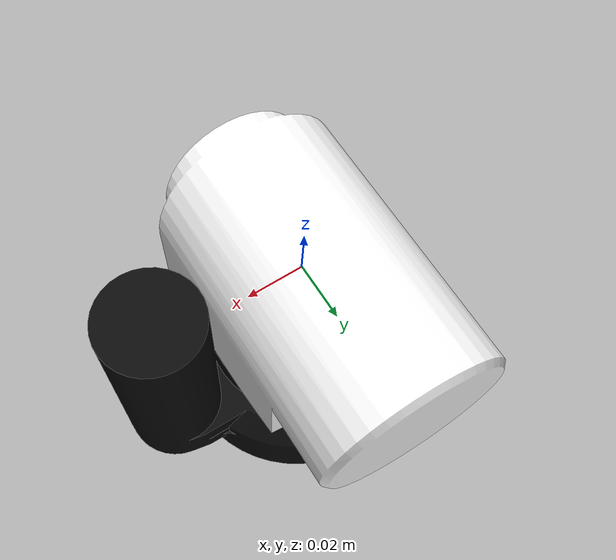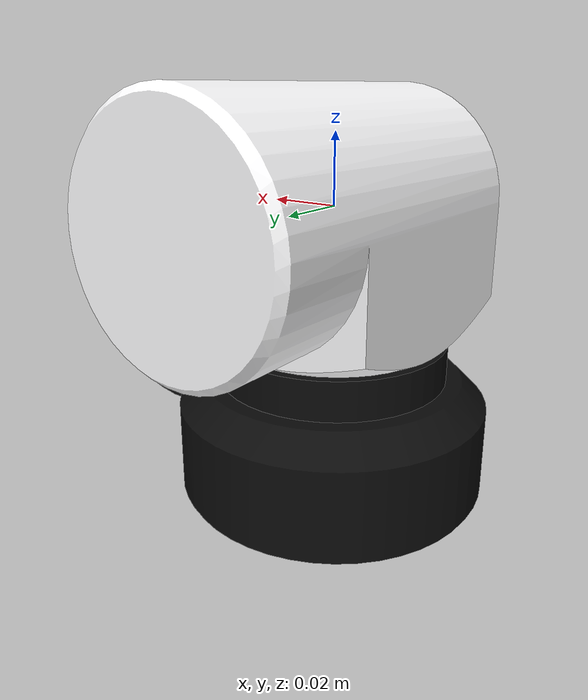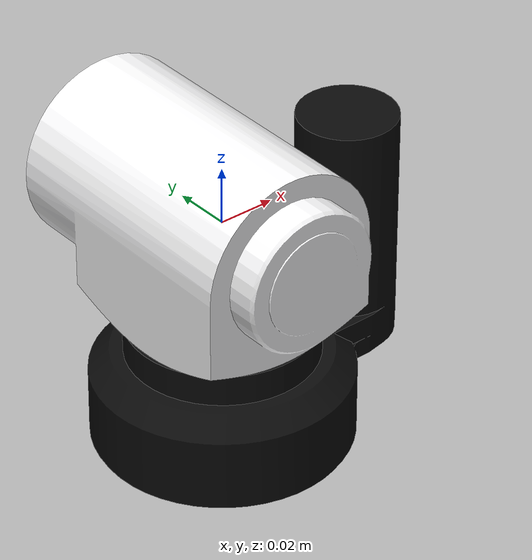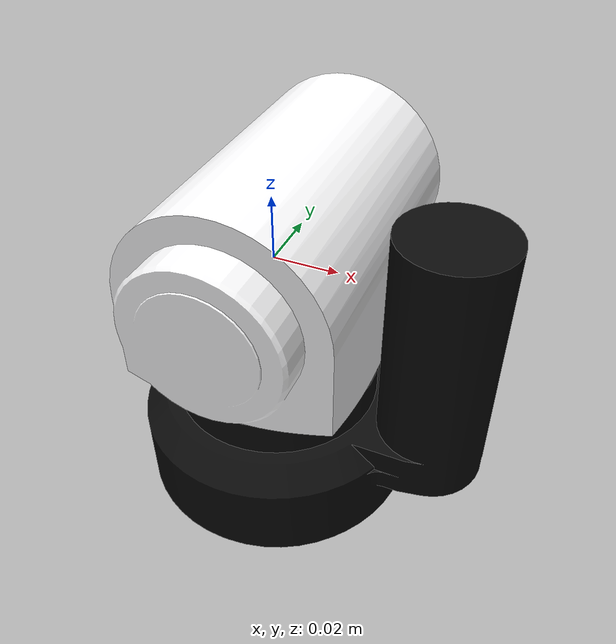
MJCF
<mujoco model="LINK_12">
  <default>
    <default class="visual">
      <geom group="2" type="mesh" contype="0" conaffinity="0"/>
    </default>
    <default class="collision">
      <geom group="3" type="mesh"/>
    </default>
  </default>
  <asset>
    <material name="254,254,255" specular="0.9973853333333333" shininess="1.0" rgba="0.996078 0.996078 1.000000 1.000000"/>
    <material name="10,10,10" specular="0.039216" shininess="1.0" rgba="0.039216 0.039216 0.039216 1.000000"/>
    <mesh file="LINK_12_0.obj"/>
    <mesh file="LINK_12_1.obj"/>
    <mesh file="LINK_12_collision_0.obj"/>
    <mesh file="LINK_12_collision_1.obj"/>
    <mesh file="LINK_12_collision_2.obj"/>
    <mesh file="LINK_12_collision_3.obj"/>
    <mesh file="LINK_12_collision_4.obj"/>
    <mesh file="LINK_12_collision_5.obj"/>
    <mesh file="LINK_12_collision_6.obj"/>
    <mesh file="LINK_12_collision_7.obj"/>
    <mesh file="LINK_12_collision_8.obj"/>
    <mesh file="LINK_12_collision_9.obj"/>
    <mesh file="LINK_12_collision_10.obj"/>
    <mesh file="LINK_12_collision_11.obj"/>
  </asset>
  <worldbody>
    <body name="LINK_12">
      <geom mesh="LINK_12_0" material="10,10,10" class="visual"/>
      <geom mesh="LINK_12_1" material="254,254,255" class="visual"/>
      <geom mesh="LINK_12_collision_0" rgba="0.6565159147803536 0.6363243612947505 0.5461586954781457 1" class="collision"/>
      <geom mesh="LINK_12_collision_1" rgba="0.29894376588839044 0.18950783581260222 0.3602377443595913 1" class="collision"/>
      <geom mesh="LINK_12_collision_2" rgba="0.19445446798342747 0.18105126544167116 0.4191760892480617 1" class="collision"/>
      <geom mesh="LINK_12_collision_3" rgba="0.9225497365770072 0.9164540806266255 0.6183542787631748 1" class="collision"/>
      <geom mesh="LINK_12_collision_4" rgba="0.17350482073531082 0.8888593771017995 0.9405088303864442 1" class="collision"/>
      <geom mesh="LINK_12_collision_5" rgba="0.19357065303907384 0.08666957372036399 0.051654367571896675 1" class="collision"/>
      <geom mesh="LINK_12_collision_6" rgba="0.2691137163420073 0.05438758018733181 0.6216648579577284 1" class="collision"/>
      <geom mesh="LINK_12_collision_7" rgba="0.22088905965390826 0.17829832039011662 0.7198979083389443 1" class="collision"/>
      <geom mesh="LINK_12_collision_8" rgba="0.235339895872823 0.6412879010153056 0.9928254573922298 1" class="collision"/>
      <geom mesh="LINK_12_collision_9" rgba="0.17763891235644647 0.051961282058066494 0.5619186977812812 1" class="collision"/>
      <geom mesh="LINK_12_collision_10" rgba="0.9667566411076886 0.40693203003416356 0.14018491217817797 1" class="collision"/>
      <geom mesh="LINK_12_collision_11" rgba="0.3874432475091921 0.46865686328468537 0.9874765492324635 1" class="collision"/>
    </body>
  </worldbody>
</mujoco>
